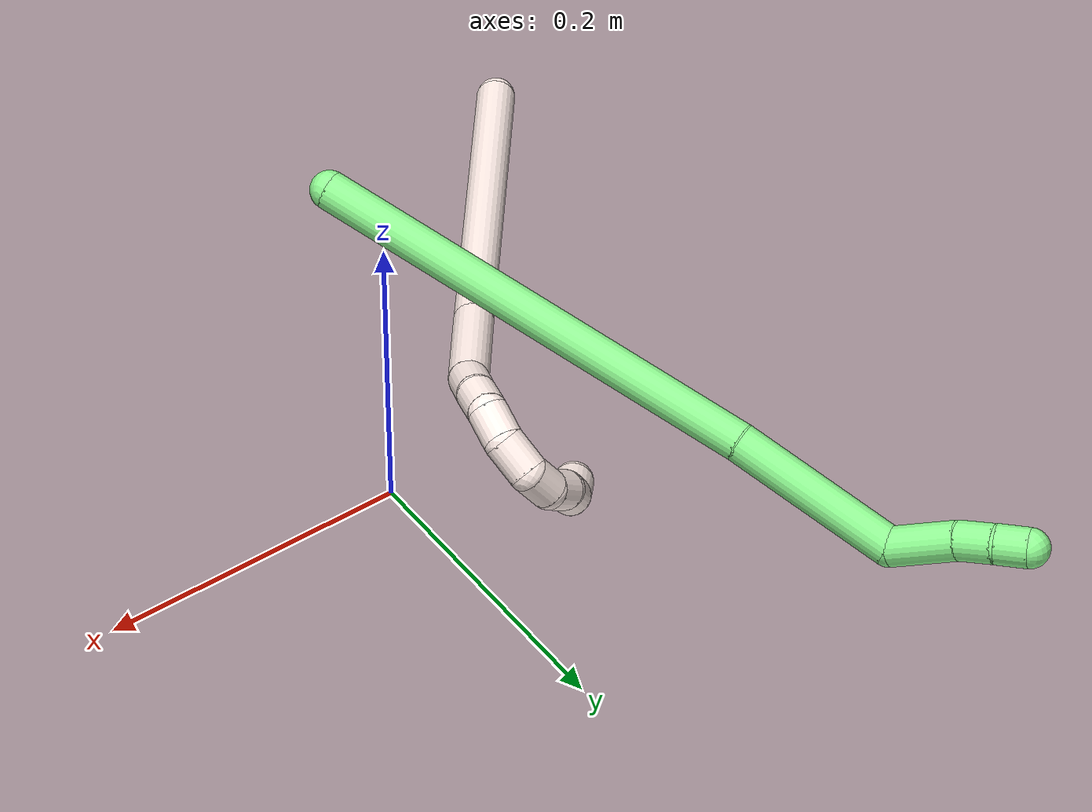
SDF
<sdf version="1.7">
 <world name="default">
  <model name="11">
   <static>0</static>
   <link name="11">
    <collision name="collision-cylinder-e_1_1_4">
     <pose>0.033829 0.04273 -0.117284 -2.79221 0.264656 -1.29234</pose>
     <geometry><cylinder><radius>0.0125</radius><length>0.258657</length></cylinder></geometry>
     <surface>
      <friction><ode><mu>1.16</mu><mu2>1.16</mu2><slip1>0</slip1><slip2>0</slip2></ode></friction>
      <contact><ode><kp>1e+06</kp><kd>1</kd><max_vel>0</max_vel><min_depth>0.001</min_depth></ode></contact>
     </surface>
    </collision>
    <visual name="visual-cylinder-e_1_1_4">
     <pose>0.033829 0.04273 -0.117284 -2.79221 0.264656 -1.29234</pose>
     <geometry><cylinder><radius>0.0125</radius><length>0.258657</length></cylinder></geometry>
     <material><ambient>1 0.933333 0.909804 1</ambient></material>
    </visual>
    <collision name="collision-cylinder-e_2_4_5">
     <pose>0.078179 0.097531 -0.264735 -2.76097 0.313131 -1.37296</pose>
     <geometry><cylinder><radius>0.0125</radius><length>0.068305</length></cylinder></geometry>
     <surface>
      <friction><ode><mu>1.16</mu><mu2>1.16</mu2><slip1>0</slip1><slip2>0</slip2></ode></friction>
      <contact><ode><kp>1e+06</kp><kd>1</kd><max_vel>0</max_vel><min_depth>0.001</min_depth></ode></contact>
     </surface>
    </collision>
    <visual name="visual-cylinder-e_2_4_5">
     <pose>0.078179 0.097531 -0.264735 -2.76097 0.313131 -1.37296</pose>
     <geometry><cylinder><radius>0.0125</radius><length>0.068305</length></cylinder></geometry>
     <material><ambient>1 0.933333 0.909804 1</ambient></material>
    </visual>
    <collision name="collision-cylinder-e_3_5_6">
     <pose>0.09306 0.116672 -0.303414 -2.44847 0.375355 -0.96826</pose>
     <geometry><cylinder><radius>0.0125</radius><length>0.023789</length></cylinder></geometry>
     <surface>
      <friction><ode><mu>1.16</mu><mu2>1.16</mu2><slip1>0</slip1><slip2>0</slip2></ode></friction>
      <contact><ode><kp>1e+06</kp><kd>1</kd><max_vel>0</max_vel><min_depth>0.001</min_depth></ode></contact>
     </surface>
    </collision>
    <visual name="visual-cylinder-e_3_5_6">
     <pose>0.09306 0.116672 -0.303414 -2.44847 0.375355 -0.96826</pose>
     <geometry><cylinder><radius>0.0125</radius><length>0.023789</length></cylinder></geometry>
     <material><ambient>1 0.933333 0.909804 1</ambient></material>
    </visual>
    <collision name="collision-cylinder-e_4_6_7">
     <pose>0.099482 0.130808 -0.319932 -2.4185 0.190738 -0.495512</pose>
     <geometry><cylinder><radius>0.0125</radius><length>0.021748</length></cylinder></geometry>
     <surface>
      <friction><ode><mu>1.16</mu><mu2>1.16</mu2><slip1>0</slip1><slip2>0</slip2></ode></friction>
      <contact><ode><kp>1e+06</kp><kd>1</kd><max_vel>0</max_vel><min_depth>0.001</min_depth></ode></contact>
     </surface>
    </collision>
    <visual name="visual-cylinder-e_4_6_7">
     <pose>0.099482 0.130808 -0.319932 -2.4185 0.190738 -0.495512</pose>
     <geometry><cylinder><radius>0.0125</radius><length>0.021748</length></cylinder></geometry>
     <material><ambient>1 0.933333 0.909804 1</ambient></material>
    </visual>
    <collision name="collision-cylinder-e_5_7_8">
     <pose>0.097492 0.144206 -0.335899 -2.46965 -0.379013 1.00455</pose>
     <geometry><cylinder><radius>0.0125</radius><length>0.021901</length></cylinder></geometry>
     <surface>
      <friction><ode><mu>1.16</mu><mu2>1.16</mu2><slip1>0</slip1><slip2>0</slip2></ode></friction>
      <contact><ode><kp>1e+06</kp><kd>1</kd><max_vel>0</max_vel><min_depth>0.001</min_depth></ode></contact>
     </surface>
    </collision>
    <visual name="visual-cylinder-e_5_7_8">
     <pose>0.097492 0.144206 -0.335899 -2.46965 -0.379013 1.00455</pose>
     <geometry><cylinder><radius>0.0125</radius><length>0.021901</length></cylinder></geometry>
     <material><ambient>1 0.933333 0.909804 1</ambient></material>
    </visual>
    <collision name="collision-cylinder-e_6_8_9">
     <pose>0.085457 0.157444 -0.349355 -2.24299 -0.735375 1.34809</pose>
     <geometry><cylinder><radius>0.0125</radius><length>0.023798</length></cylinder></geometry>
     <surface>
      <friction><ode><mu>1.16</mu><mu2>1.16</mu2><slip1>0</slip1><slip2>0</slip2></ode></friction>
      <contact><ode><kp>1e+06</kp><kd>1</kd><max_vel>0</max_vel><min_depth>0.001</min_depth></ode></contact>
     </surface>
    </collision>
    <visual name="visual-cylinder-e_6_8_9">
     <pose>0.085457 0.157444 -0.349355 -2.24299 -0.735375 1.34809</pose>
     <geometry><cylinder><radius>0.0125</radius><length>0.023798</length></cylinder></geometry>
     <material><ambient>1 0.933333 0.909804 1</ambient></material>
    </visual>
    <collision name="collision-cylinder-e_7_9_10">
     <pose>0.067301 0.166912 -0.353539 -1.09809 -1.29496 0.866668</pose>
     <geometry><cylinder><radius>0.0125</radius><length>0.021146</length></cylinder></geometry>
     <surface>
      <friction><ode><mu>1.16</mu><mu2>1.16</mu2><slip1>0</slip1><slip2>0</slip2></ode></friction>
      <contact><ode><kp>1e+06</kp><kd>1</kd><max_vel>0</max_vel><min_depth>0.001</min_depth></ode></contact>
     </surface>
    </collision>
    <visual name="visual-cylinder-e_7_9_10">
     <pose>0.067301 0.166912 -0.353539 -1.09809 -1.29496 0.866668</pose>
     <geometry><cylinder><radius>0.0125</radius><length>0.021146</length></cylinder></geometry>
     <material><ambient>1 0.933333 0.909804 1</ambient></material>
    </visual>
    <collision name="collision-cylinder-e_8_10_11">
     <pose>0.048718 0.169869 -0.34637 -0.067086 -0.961279 0.03499</pose>
     <geometry><cylinder><radius>0.0125</radius><length>0.020512</length></cylinder></geometry>
     <surface>
      <friction><ode><mu>1.16</mu><mu2>1.16</mu2><slip1>0</slip1><slip2>0</slip2></ode></friction>
      <contact><ode><kp>1e+06</kp><kd>1</kd><max_vel>0</max_vel><min_depth>0.001</min_depth></ode></contact>
     </surface>
    </collision>
    <visual name="visual-cylinder-e_8_10_11">
     <pose>0.048718 0.169869 -0.34637 -0.067086 -0.961279 0.03499</pose>
     <geometry><cylinder><radius>0.0125</radius><length>0.020512</length></cylinder></geometry>
     <material><ambient>1 0.933333 0.909804 1</ambient></material>
    </visual>
    <collision name="collision-cylinder-e_9_11_12">
     <pose>0.031566 0.167742 -0.336342 0.543861 -1.06232 -0.324736</pose>
     <geometry><cylinder><radius>0.0125</radius><length>0.020017</length></cylinder></geometry>
     <surface>
      <friction><ode><mu>1.16</mu><mu2>1.16</mu2><slip1>0</slip1><slip2>0</slip2></ode></friction>
      <contact><ode><kp>1e+06</kp><kd>1</kd><max_vel>0</max_vel><min_depth>0.001</min_depth></ode></contact>
     </surface>
    </collision>
    <visual name="visual-cylinder-e_9_11_12">
     <pose>0.031566 0.167742 -0.336342 0.543861 -1.06232 -0.324736</pose>
     <geometry><cylinder><radius>0.0125</radius><length>0.020017</length></cylinder></geometry>
     <material><ambient>1 0.933333 0.909804 1</ambient></material>
    </visual>
    <collision name="collision-cylinder-e_10_12_2">
     <pose>0.018261 0.16188 -0.323849 0.381654 -0.470594 -0.092558</pose>
     <geometry><cylinder><radius>0.0125</radius><length>0.020126</length></cylinder></geometry>
     <surface>
      <friction><ode><mu>1.16</mu><mu2>1.16</mu2><slip1>0</slip1><slip2>0</slip2></ode></friction>
      <contact><ode><kp>1e+06</kp><kd>1</kd><max_vel>0</max_vel><min_depth>0.001</min_depth></ode></contact>
     </surface>
    </collision>
    <visual name="visual-cylinder-e_10_12_2">
     <pose>0.018261 0.16188 -0.323849 0.381654 -0.470594 -0.092558</pose>
     <geometry><cylinder><radius>0.0125</radius><length>0.020126</length></cylinder></geometry>
     <material><ambient>1 0.933333 0.909804 1</ambient></material>
    </visual>
    <collision name="collision-sphere-2">
     <pose>0.013699 0.158539 -0.315525 0 -0 0</pose>
     <geometry><sphere><radius>0.0125</radius></sphere></geometry>
     <surface>
      <friction><ode><mu>1.16</mu><mu2>1.16</mu2><slip1>0</slip1><slip2>0</slip2></ode></friction>
      <contact><ode><kp>1e+06</kp><kd>1</kd><max_vel>0</max_vel><min_depth>0.001</min_depth></ode></contact>
     </surface>
    </collision>
    <visual name="visual-sphere-2">
     <pose>0.013699 0.158539 -0.315525 0 -0 0</pose>
     <geometry><sphere><radius>0.0125</radius></sphere></geometry>
     <material><ambient>1 0.933333 0.909804 1</ambient></material>
    </visual>
    <collision name="collision-sphere-12">
     <pose>0.022824 0.16522 -0.332173 0 -0 0</pose>
     <geometry><sphere><radius>0.0125</radius></sphere></geometry>
     <surface>
      <friction><ode><mu>1.16</mu><mu2>1.16</mu2><slip1>0</slip1><slip2>0</slip2></ode></friction>
      <contact><ode><kp>1e+06</kp><kd>1</kd><max_vel>0</max_vel><min_depth>0.001</min_depth></ode></contact>
     </surface>
    </collision>
    <visual name="visual-sphere-12">
     <pose>0.022824 0.16522 -0.332173 0 -0 0</pose>
     <geometry><sphere><radius>0.0125</radius></sphere></geometry>
     <material><ambient>1 0.933333 0.909804 1</ambient></material>
    </visual>
    <collision name="collision-sphere-11">
     <pose>0.040309 0.170263 -0.340512 0 -0 0</pose>
     <geometry><sphere><radius>0.0125</radius></sphere></geometry>
     <surface>
      <friction><ode><mu>1.16</mu><mu2>1.16</mu2><slip1>0</slip1><slip2>0</slip2></ode></friction>
      <contact><ode><kp>1e+06</kp><kd>1</kd><max_vel>0</max_vel><min_depth>0.001</min_depth></ode></contact>
     </surface>
    </collision>
    <visual name="visual-sphere-11">
     <pose>0.040309 0.170263 -0.340512 0 -0 0</pose>
     <geometry><sphere><radius>0.0125</radius></sphere></geometry>
     <material><ambient>1 0.933333 0.909804 1</ambient></material>
    </visual>
    <collision name="collision-sphere-10">
     <pose>0.057127 0.169476 -0.352228 0 -0 0</pose>
     <geometry><sphere><radius>0.0125</radius></sphere></geometry>
     <surface>
      <friction><ode><mu>1.16</mu><mu2>1.16</mu2><slip1>0</slip1><slip2>0</slip2></ode></friction>
      <contact><ode><kp>1e+06</kp><kd>1</kd><max_vel>0</max_vel><min_depth>0.001</min_depth></ode></contact>
     </surface>
    </collision>
    <visual name="visual-sphere-10">
     <pose>0.057127 0.169476 -0.352228 0 -0 0</pose>
     <geometry><sphere><radius>0.0125</radius></sphere></geometry>
     <material><ambient>1 0.933333 0.909804 1</ambient></material>
    </visual>
    <collision name="collision-sphere-9">
     <pose>0.077474 0.164348 -0.35485 0 -0 0</pose>
     <geometry><sphere><radius>0.0125</radius></sphere></geometry>
     <surface>
      <friction><ode><mu>1.16</mu><mu2>1.16</mu2><slip1>0</slip1><slip2>0</slip2></ode></friction>
      <contact><ode><kp>1e+06</kp><kd>1</kd><max_vel>0</max_vel><min_depth>0.001</min_depth></ode></contact>
     </surface>
    </collision>
    <visual name="visual-sphere-9">
     <pose>0.077474 0.164348 -0.35485 0 -0 0</pose>
     <geometry><sphere><radius>0.0125</radius></sphere></geometry>
     <material><ambient>1 0.933333 0.909804 1</ambient></material>
    </visual>
    <collision name="collision-sphere-4">
     <pose>0.067659 0.08546 -0.234568 0 -0 0</pose>
     <geometry><sphere><radius>0.0125</radius></sphere></geometry>
     <surface>
      <friction><ode><mu>1.16</mu><mu2>1.16</mu2><slip1>0</slip1><slip2>0</slip2></ode></friction>
      <contact><ode><kp>1e+06</kp><kd>1</kd><max_vel>0</max_vel><min_depth>0.001</min_depth></ode></contact>
     </surface>
    </collision>
    <visual name="visual-sphere-4">
     <pose>0.067659 0.08546 -0.234568 0 -0 0</pose>
     <geometry><sphere><radius>0.0125</radius></sphere></geometry>
     <material><ambient>1 0.933333 0.909804 1</ambient></material>
    </visual>
    <collision name="collision-sphere-1">
     <geometry><sphere><radius>0.0125</radius></sphere></geometry>
     <surface>
      <friction><ode><mu>1.16</mu><mu2>1.16</mu2><slip1>0</slip1><slip2>0</slip2></ode></friction>
      <contact><ode><kp>1e+06</kp><kd>1</kd><max_vel>0</max_vel><min_depth>0.001</min_depth></ode></contact>
     </surface>
    </collision>
    <visual name="visual-sphere-1">
     <geometry><sphere><radius>0.0125</radius></sphere></geometry>
     <material><ambient>1 0.933333 0.909804 1</ambient></material>
    </visual>
    <collision name="collision-sphere-8">
     <pose>0.09344 0.150539 -0.343861 0 -0 0</pose>
     <geometry><sphere><radius>0.0125</radius></sphere></geometry>
     <surface>
      <friction><ode><mu>1.16</mu><mu2>1.16</mu2><slip1>0</slip1><slip2>0</slip2></ode></friction>
      <contact><ode><kp>1e+06</kp><kd>1</kd><max_vel>0</max_vel><min_depth>0.001</min_depth></ode></contact>
     </surface>
    </collision>
    <visual name="visual-sphere-8">
     <pose>0.09344 0.150539 -0.343861 0 -0 0</pose>
     <geometry><sphere><radius>0.0125</radius></sphere></geometry>
     <material><ambient>1 0.933333 0.909804 1</ambient></material>
    </visual>
    <collision name="collision-sphere-5">
     <pose>0.088699 0.109602 -0.294901 0 -0 0</pose>
     <geometry><sphere><radius>0.0125</radius></sphere></geometry>
     <surface>
      <friction><ode><mu>1.16</mu><mu2>1.16</mu2><slip1>0</slip1><slip2>0</slip2></ode></friction>
      <contact><ode><kp>1e+06</kp><kd>1</kd><max_vel>0</max_vel><min_depth>0.001</min_depth></ode></contact>
     </surface>
    </collision>
    <visual name="visual-sphere-5">
     <pose>0.088699 0.109602 -0.294901 0 -0 0</pose>
     <geometry><sphere><radius>0.0125</radius></sphere></geometry>
     <material><ambient>1 0.933333 0.909804 1</ambient></material>
    </visual>
    <collision name="collision-sphere-6">
     <pose>0.09742 0.123743 -0.311927 0 -0 0</pose>
     <geometry><sphere><radius>0.0125</radius></sphere></geometry>
     <surface>
      <friction><ode><mu>1.16</mu><mu2>1.16</mu2><slip1>0</slip1><slip2>0</slip2></ode></friction>
      <contact><ode><kp>1e+06</kp><kd>1</kd><max_vel>0</max_vel><min_depth>0.001</min_depth></ode></contact>
     </surface>
    </collision>
    <visual name="visual-sphere-6">
     <pose>0.09742 0.123743 -0.311927 0 -0 0</pose>
     <geometry><sphere><radius>0.0125</radius></sphere></geometry>
     <material><ambient>1 0.933333 0.909804 1</ambient></material>
    </visual>
    <collision name="collision-sphere-7">
     <pose>0.101543 0.137873 -0.327937 0 -0 0</pose>
     <geometry><sphere><radius>0.0125</radius></sphere></geometry>
     <surface>
      <friction><ode><mu>1.16</mu><mu2>1.16</mu2><slip1>0</slip1><slip2>0</slip2></ode></friction>
      <contact><ode><kp>1e+06</kp><kd>1</kd><max_vel>0</max_vel><min_depth>0.001</min_depth></ode></contact>
     </surface>
    </collision>
    <visual name="visual-sphere-7">
     <pose>0.101543 0.137873 -0.327937 0 -0 0</pose>
     <geometry><sphere><radius>0.0125</radius></sphere></geometry>
     <material><ambient>1 0.933333 0.909804 1</ambient></material>
    </visual>
    <inertial>
     <pose>0.052117 0.087739 -0.212193 0 -0 0</pose>
     <mass>0.5</mass>
     <inertia>
      <ixx>-0.000976</ixx>
      <ixy>0</ixy>
      <ixz>0</ixz>
      <iyy>-0.001609</iyy>
      <iyz>0</iyz>
      <izz>-0.000902</izz>
     </inertia>
    </inertial>
   </link>
   <pose>-0.25017 -0.247074 0.021413 0.939724 -1.20891 -0.306129</pose>
  </model>
  <model name="13">
   <static>0</static>
   <link name="13">
    <collision name="collision-cylinder-e_1_1_4">
     <pose>-0.059487 0.135298 -0.028514 -1.77851 -0.406286 0.497331</pose>
     <geometry><cylinder><radius>0.0125</radius><length>0.301046</length></cylinder></geometry>
     <surface>
      <friction><ode><mu>1.16</mu><mu2>1.16</mu2><slip1>0</slip1><slip2>0</slip2></ode></friction>
      <contact><ode><kp>1e+06</kp><kd>1</kd><max_vel>0</max_vel><min_depth>0.001</min_depth></ode></contact>
     </surface>
    </collision>
    <visual name="visual-cylinder-e_1_1_4">
     <pose>-0.059487 0.135298 -0.028514 -1.77851 -0.406286 0.497331</pose>
     <geometry><cylinder><radius>0.0125</radius><length>0.301046</length></cylinder></geometry>
     <material><ambient>0.564706 0.984314 0.572549 1</ambient></material>
    </visual>
    <collision name="collision-cylinder-e_2_4_5">
     <pose>-0.135346 0.321727 -0.068713 -1.79545 -0.302572 0.377874</pose>
     <geometry><cylinder><radius>0.0125</radius><length>0.109891</length></cylinder></geometry>
     <surface>
      <friction><ode><mu>1.16</mu><mu2>1.16</mu2><slip1>0</slip1><slip2>0</slip2></ode></friction>
      <contact><ode><kp>1e+06</kp><kd>1</kd><max_vel>0</max_vel><min_depth>0.001</min_depth></ode></contact>
     </surface>
    </collision>
    <visual name="visual-cylinder-e_2_4_5">
     <pose>-0.135346 0.321727 -0.068713 -1.79545 -0.302572 0.377874</pose>
     <geometry><cylinder><radius>0.0125</radius><length>0.109891</length></cylinder></geometry>
     <material><ambient>0.564706 0.984314 0.572549 1</ambient></material>
    </visual>
    <collision name="collision-cylinder-e_3_5_6">
     <pose>-0.169888 0.382603 -0.088243 -2.24865 -0.967836 1.66411</pose>
     <geometry><cylinder><radius>0.0125</radius><length>0.044119</length></cylinder></geometry>
     <surface>
      <friction><ode><mu>1.16</mu><mu2>1.16</mu2><slip1>0</slip1><slip2>0</slip2></ode></friction>
      <contact><ode><kp>1e+06</kp><kd>1</kd><max_vel>0</max_vel><min_depth>0.001</min_depth></ode></contact>
     </surface>
    </collision>
    <visual name="visual-cylinder-e_3_5_6">
     <pose>-0.169888 0.382603 -0.088243 -2.24865 -0.967836 1.66411</pose>
     <geometry><cylinder><radius>0.0125</radius><length>0.044119</length></cylinder></geometry>
     <material><ambient>0.564706 0.984314 0.572549 1</ambient></material>
    </visual>
    <collision name="collision-cylinder-e_4_6_7">
     <pose>-0.197328 0.399342 -0.099257 -1.99621 -0.878941 1.26004</pose>
     <geometry><cylinder><radius>0.0125</radius><length>0.024077</length></cylinder></geometry>
     <surface>
      <friction><ode><mu>1.16</mu><mu2>1.16</mu2><slip1>0</slip1><slip2>0</slip2></ode></friction>
      <contact><ode><kp>1e+06</kp><kd>1</kd><max_vel>0</max_vel><min_depth>0.001</min_depth></ode></contact>
     </surface>
    </collision>
    <visual name="visual-cylinder-e_4_6_7">
     <pose>-0.197328 0.399342 -0.099257 -1.99621 -0.878941 1.26004</pose>
     <geometry><cylinder><radius>0.0125</radius><length>0.024077</length></cylinder></geometry>
     <material><ambient>0.564706 0.984314 0.572549 1</ambient></material>
    </visual>
    <collision name="collision-cylinder-e_5_7_2">
     <pose>-0.213523 0.412949 -0.106574 -2.13111 -0.725742 1.20312</pose>
     <geometry><cylinder><radius>0.0125</radius><length>0.020867</length></cylinder></geometry>
     <surface>
      <friction><ode><mu>1.16</mu><mu2>1.16</mu2><slip1>0</slip1><slip2>0</slip2></ode></friction>
      <contact><ode><kp>1e+06</kp><kd>1</kd><max_vel>0</max_vel><min_depth>0.001</min_depth></ode></contact>
     </surface>
    </collision>
    <visual name="visual-cylinder-e_5_7_2">
     <pose>-0.213523 0.412949 -0.106574 -2.13111 -0.725742 1.20312</pose>
     <geometry><cylinder><radius>0.0125</radius><length>0.020867</length></cylinder></geometry>
     <material><ambient>0.564706 0.984314 0.572549 1</ambient></material>
    </visual>
    <collision name="collision-sphere-2">
     <pose>-0.220447 0.419559 -0.110722 0 -0 0</pose>
     <geometry><sphere><radius>0.0125</radius></sphere></geometry>
     <surface>
      <friction><ode><mu>1.16</mu><mu2>1.16</mu2><slip1>0</slip1><slip2>0</slip2></ode></friction>
      <contact><ode><kp>1e+06</kp><kd>1</kd><max_vel>0</max_vel><min_depth>0.001</min_depth></ode></contact>
     </surface>
    </collision>
    <visual name="visual-sphere-2">
     <pose>-0.220447 0.419559 -0.110722 0 -0 0</pose>
     <geometry><sphere><radius>0.0125</radius></sphere></geometry>
     <material><ambient>0.564706 0.984314 0.572549 1</ambient></material>
    </visual>
    <collision name="collision-sphere-7">
     <pose>-0.206598 0.406338 -0.102427 0 -0 0</pose>
     <geometry><sphere><radius>0.0125</radius></sphere></geometry>
     <surface>
      <friction><ode><mu>1.16</mu><mu2>1.16</mu2><slip1>0</slip1><slip2>0</slip2></ode></friction>
      <contact><ode><kp>1e+06</kp><kd>1</kd><max_vel>0</max_vel><min_depth>0.001</min_depth></ode></contact>
     </surface>
    </collision>
    <visual name="visual-sphere-7">
     <pose>-0.206598 0.406338 -0.102427 0 -0 0</pose>
     <geometry><sphere><radius>0.0125</radius></sphere></geometry>
     <material><ambient>0.564706 0.984314 0.572549 1</ambient></material>
    </visual>
    <collision name="collision-sphere-6">
     <pose>-0.188058 0.392347 -0.096088 0 -0 0</pose>
     <geometry><sphere><radius>0.0125</radius></sphere></geometry>
     <surface>
      <friction><ode><mu>1.16</mu><mu2>1.16</mu2><slip1>0</slip1><slip2>0</slip2></ode></friction>
      <contact><ode><kp>1e+06</kp><kd>1</kd><max_vel>0</max_vel><min_depth>0.001</min_depth></ode></contact>
     </surface>
    </collision>
    <visual name="visual-sphere-6">
     <pose>-0.188058 0.392347 -0.096088 0 -0 0</pose>
     <geometry><sphere><radius>0.0125</radius></sphere></geometry>
     <material><ambient>0.564706 0.984314 0.572549 1</ambient></material>
    </visual>
    <collision name="collision-sphere-5">
     <pose>-0.151719 0.372859 -0.080398 0 -0 0</pose>
     <geometry><sphere><radius>0.0125</radius></sphere></geometry>
     <surface>
      <friction><ode><mu>1.16</mu><mu2>1.16</mu2><slip1>0</slip1><slip2>0</slip2></ode></friction>
      <contact><ode><kp>1e+06</kp><kd>1</kd><max_vel>0</max_vel><min_depth>0.001</min_depth></ode></contact>
     </surface>
    </collision>
    <visual name="visual-sphere-5">
     <pose>-0.151719 0.372859 -0.080398 0 -0 0</pose>
     <geometry><sphere><radius>0.0125</radius></sphere></geometry>
     <material><ambient>0.564706 0.984314 0.572549 1</ambient></material>
    </visual>
    <collision name="collision-sphere-1">
     <geometry><sphere><radius>0.0125</radius></sphere></geometry>
     <surface>
      <friction><ode><mu>1.16</mu><mu2>1.16</mu2><slip1>0</slip1><slip2>0</slip2></ode></friction>
      <contact><ode><kp>1e+06</kp><kd>1</kd><max_vel>0</max_vel><min_depth>0.001</min_depth></ode></contact>
     </surface>
    </collision>
    <visual name="visual-sphere-1">
     <geometry><sphere><radius>0.0125</radius></sphere></geometry>
     <material><ambient>0.564706 0.984314 0.572549 1</ambient></material>
    </visual>
    <collision name="collision-sphere-4">
     <pose>-0.118974 0.270595 -0.057029 0 -0 0</pose>
     <geometry><sphere><radius>0.0125</radius></sphere></geometry>
     <surface>
      <friction><ode><mu>1.16</mu><mu2>1.16</mu2><slip1>0</slip1><slip2>0</slip2></ode></friction>
      <contact><ode><kp>1e+06</kp><kd>1</kd><max_vel>0</max_vel><min_depth>0.001</min_depth></ode></contact>
     </surface>
    </collision>
    <visual name="visual-sphere-4">
     <pose>-0.118974 0.270595 -0.057029 0 -0 0</pose>
     <geometry><sphere><radius>0.0125</radius></sphere></geometry>
     <material><ambient>0.564706 0.984314 0.572549 1</ambient></material>
    </visual>
    <inertial>
     <pose>-0.098967 0.222395 -0.049284 0 -0 0</pose>
     <mass>0.5</mass>
     <inertia>
      <ixx>0.00298</ixx>
      <ixy>0</ixy>
      <ixz>0</ixz>
      <iyy>0.001086</iyy>
      <iyz>0</iyz>
      <izz>-0.001229</izz>
     </inertia>
    </inertial>
   </link>
   <pose>-0.052957 -0.141835 0.11786 -1.29556 0.931343 -1.09742</pose>
  </model>
 </world>
</sdf>
